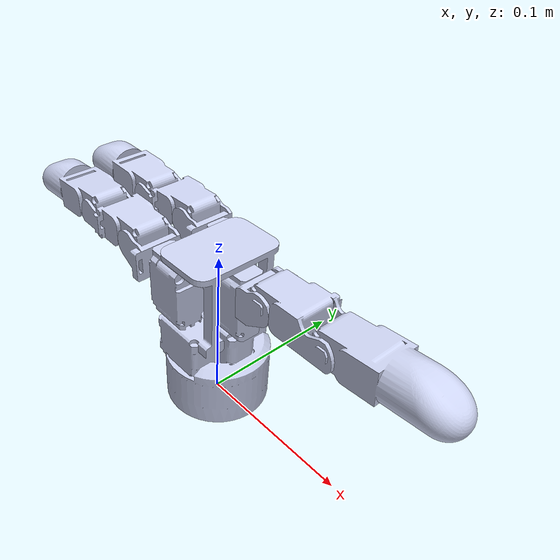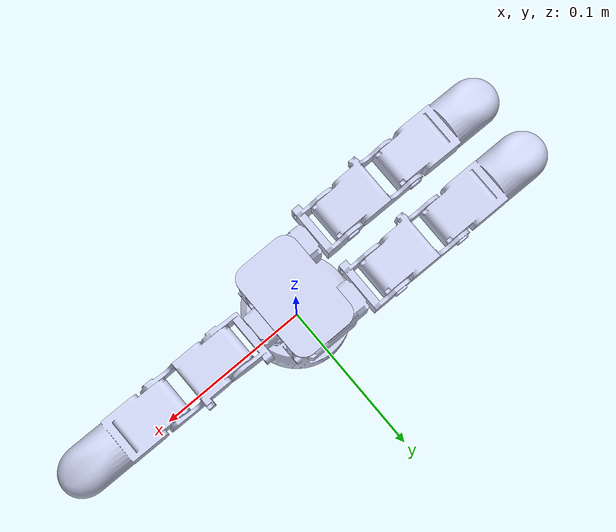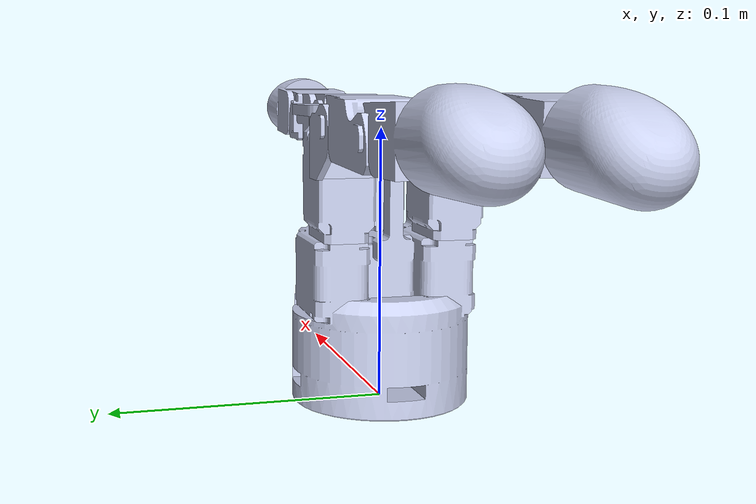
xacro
<?xml version="1.0" encoding="utf-8"?>
<robot
  name="delto" xmlns:xacro="http://www.ros.org/wiki/xacro">
  <xacro:include filename="$(find delto)/urdf/delto.gazebo" />

  <link name="world"/>
  <joint name="base_joint"
    type="fixed">
    <origin
      xyz="0 0 0"
      rpy="0 0 0" />
    <parent
      link="world" />
    <child
      link="base_link" />
    <axis
      xyz="0 0 0" />
  </joint>
  <link
    name="base_link">
    <inertial>
      <origin
        xyz="0.0163977810461998 -0.000424816867342437 0.078525694814142"
        rpy="0 0 0" />
      <mass
        value="0.292" />
      <inertia
        ixx="0"
        ixy="0"
        ixz="0"
        iyy="0"
        iyz="0"
        izz="0" />
    </inertial>
    <visual>
      <origin
        xyz="0 0 0"
        rpy="0 0 0" />
      <geometry>
        <mesh
          filename="package://delto/meshes/base_link.STL" />
      </geometry>
      <material
        name="">
        <color
          rgba="0.792156862745098 0.819607843137255 0.933333333333333 1" />
      </material>
    </visual>
    <collision>
      <origin
        xyz="0 0 0"
        rpy="0 0 0" />
      <geometry>
        <mesh
          filename="package://delto/meshes/base_link.STL" />
      </geometry>
    </collision>
  </link>
  <link
    name="finger1_link1">
    <inertial>
      <origin
        xyz="0.0163977810461998 -0.000424816867342437 0.078525694814142"
        rpy="0 0 0" />
      <mass
        value="0.048" />
      <inertia
        ixx="0"
        ixy="0"
        ixz="0"
        iyy="0"
        iyz="0"
        izz="0" />
    </inertial>
    <visual>
      <origin
        xyz="0 0 0"
        rpy="0 0 0" />
      <geometry>
        <mesh
          filename="package://delto/meshes/finger1_link1.STL" />
      </geometry>
      <material
        name="">
        <color
          rgba="0.792156862745098 0.819607843137255 0.933333333333333 1" />
      </material>
    </visual>
    <collision>
      <origin
        xyz="0 0 0"
        rpy="0 0 0" />
      <geometry>
        <mesh
          filename="package://delto/meshes/finger1_link1.STL" />
      </geometry>
    </collision>
  </link>
  <joint
    name="finger1_joint1"
    type="revolute">
    <origin
      xyz="0.0150000000430074 0 0.0829999999999999"
      rpy="0 0 0" />
    <parent
      link="base_link" />
    <child
      link="finger1_link1" />
    <axis
      xyz="0 0 1" />
    <limit
      lower="-0.804"
      upper="0.804"
      effort="10"
      velocity="100" />
    <dynamics damping="0.64" friction="1"/>
  </joint>

  <transmission name="tran_1_1">
    <type>transmission_interface/SimpleTransmission</type>
    <joint name="finger1_joint1">
      <hardwareInterface>hardware_interface/EffortJointInterface</hardwareInterface>
    </joint>
    <actuator name="motor_1_1">
      <hardwareInterface>hardware_interface/EffortJointInterface</hardwareInterface>
      <mechanicalReduction>1</mechanicalReduction>
    </actuator>
  </transmission>

  <link
    name="finger1_link2">
    <inertial>
      <origin
        xyz="0.0163977810461998 -0.000424816867342437 0.078525694814142"
        rpy="0 0 0" />
      <mass
        value="0.012" />
      <inertia
        ixx="0"
        ixy="0"
        ixz="0"
        iyy="0"
        iyz="0"
        izz="0" />
    </inertial>
    <visual>
      <origin
        xyz="0 0 0"
        rpy="0 0 0" />
      <geometry>
        <mesh
          filename="package://delto/meshes/finger1_link2.STL" />
      </geometry>
      <material
        name="">
        <color
          rgba="0.792156862745098 0.819607843137255 0.933333333333333 1" />
      </material>
    </visual>
    <collision>
      <origin
        xyz="0 0 0"
        rpy="0 0 0" />
      <geometry>
        <mesh
          filename="package://delto/meshes/finger1_link2.STL" />
      </geometry>
    </collision>
  </link>
  <joint
    name="finger1_joint2"
    type="revolute">
    <origin
      xyz="0.0114 -5.8419E-05 0.0091"
      rpy="1.57 0 1.57" />
    <parent
      link="finger1_link1" />
    <child
      link="finger1_link2" />
    <axis
      xyz="0 0 1" />
    <limit
      lower="-1.714"
      upper="1.714"
      effort="10"
      velocity="100" />
    <dynamics damping="0.64" friction="1"/>
  </joint>

  <transmission name="tran_1_2">
    <type>transmission_interface/SimpleTransmission</type>
    <joint name="finger1_joint2">
      <hardwareInterface>hardware_interface/EffortJointInterface</hardwareInterface>
    </joint>
    <actuator name="motor_1_2">
      <hardwareInterface>hardware_interface/EffortJointInterface</hardwareInterface>
      <mechanicalReduction>1</mechanicalReduction>
    </actuator>
  </transmission>

  <link
    name="finger1_link3">
    <inertial>
      <origin
        xyz="0.0163977810461998 -0.000424816867342437 0.078525694814142"
        rpy="0 0 0" />
      <mass
        value="0.038" />
      <inertia
        ixx="0"
        ixy="0"
        ixz="0"
        iyy="0"
        iyz="0"
        izz="0" />
    </inertial>
    <visual>
      <origin
        xyz="0 0 0"
        rpy="0 0 0" />
      <geometry>
        <mesh
          filename="package://delto/meshes/finger1_link3.STL" />
      </geometry>
      <material
        name="">
        <color
          rgba="0.792156862745098 0.819607843137255 0.933333333333333 1" />
      </material>
    </visual>
    <collision>
      <origin
        xyz="0 0 0"
        rpy="0 0 0" />
      <geometry>
        <mesh
          filename="package://delto/meshes/finger1_link3.STL" />
      </geometry>
    </collision>
  </link>
  <joint
    name="finger1_joint3"
    type="revolute">
    <origin
      xyz="-0.014938 0.0098942 0.0203"
      rpy="1.57 -1.57 -1.57" />
    <parent
      link="finger1_link2" />
    <child
      link="finger1_link3" />
    <axis
      xyz="0 0 1" />
    <limit
      lower="0"
      upper="2.199"
      effort="10"
      velocity="100" />
    <dynamics damping="0.64" friction="1"/>
  </joint>

  <transmission name="tran_1_3">
    <type>transmission_interface/SimpleTransmission</type>
    <joint name="finger1_joint3">
      <hardwareInterface>hardware_interface/EffortJointInterface</hardwareInterface>
    </joint>
    <actuator name="motor_1_3">
      <hardwareInterface>hardware_interface/EffortJointInterface</hardwareInterface>
      <mechanicalReduction>1</mechanicalReduction>
    </actuator>
  </transmission>

  <link
    name="finger1_link4">
    <inertial>
      <origin
        xyz="0.0163977810461998 -0.000424816867342437 0.078525694814142"
        rpy="0 0 0" />
      <mass
        value="0.06" />
      <inertia
        ixx="0"
        ixy="0"
        ixz="0"
        iyy="0"
        iyz="0"
        izz="0" />
    </inertial>
    <visual>
      <origin
        xyz="0 0 0"
        rpy="0 0 0" />
      <geometry>
        <mesh
          filename="package://delto/meshes/finger1_link4.STL" />
      </geometry>
      <material
        name="">
        <color
          rgba="0.792156862745098 0.819607843137255 0.933333333333333 1" />
      </material>
    </visual>
    <collision>
      <origin
        xyz="0 0 0"
        rpy="0 0 0" />
      <geometry>
        <mesh
          filename="package://delto/meshes/finger1_link4.STL" />
      </geometry>
    </collision>
  </link>
  <joint
    name="finger1_joint4"
    type="revolute">
    <origin
      xyz="0.043312 -0.00012363 0"
      rpy="0 0 0" />
    <parent
      link="finger1_link3" />
    <child
      link="finger1_link4" />
    <axis
      xyz="0 0 1" />
    <limit
      lower="-0.376"
      upper="2.225"
      effort="10"
      velocity="100" />
    <dynamics damping="0.64" friction="1"/>
  </joint>

  <transmission name="tran_1_4">
    <type>transmission_interface/SimpleTransmission</type>
    <joint name="finger1_joint4">
      <hardwareInterface>hardware_interface/EffortJointInterface</hardwareInterface>
    </joint>
    <actuator name="motor_1_4">
      <hardwareInterface>hardware_interface/EffortJointInterface</hardwareInterface>
      <mechanicalReduction>1</mechanicalReduction>
    </actuator>
  </transmission>

  <link
    name="finger2_link1">
    <inertial>
      <origin
        xyz="0.0163977810461998 -0.000424816867342437 0.078525694814142"
        rpy="0 0 0" />
      <mass
        value="0.048" />
      <inertia
        ixx="0"
        ixy="0"
        ixz="0"
        iyy="0"
        iyz="0"
        izz="0" />
    </inertial>
    <visual>
      <origin
        xyz="0 0 0"
        rpy="0 0 0" />
      <geometry>
        <mesh
          filename="package://delto/meshes/finger2_link1.STL" />
      </geometry>
      <material
        name="">
        <color
          rgba="0.792156862745098 0.819607843137255 0.933333333333333 1" />
      </material>
    </visual>
    <collision>
      <origin
        xyz="0 0 0"
        rpy="0 0 0" />
      <geometry>
        <mesh
          filename="package://delto/meshes/finger2_link1.STL" />
      </geometry>
    </collision>
  </link>
  <joint
    name="finger2_joint1"
    type="revolute">
    <origin
      xyz="-0.0132 0.0196 0.083"
      rpy="0 0 3.14" />
    <parent
      link="base_link" />
    <child
      link="finger2_link1" />
    <axis
      xyz="0 0 1" />
    <limit
      lower="-2.147"
      upper="0.788"
      effort="10"
      velocity="100" />
    <dynamics damping="0.64" friction="1"/>
  </joint>

  <transmission name="tran_2_1">
    <type>transmission_interface/SimpleTransmission</type>
    <joint name="finger2_joint1">
      <hardwareInterface>hardware_interface/EffortJointInterface</hardwareInterface>
    </joint>
    <actuator name="motor_2_1">
      <hardwareInterface>hardware_interface/EffortJointInterface</hardwareInterface>
      <mechanicalReduction>1</mechanicalReduction>
    </actuator>
  </transmission>

  <link
    name="finger2_link2">
    <inertial>
      <origin
        xyz="0.0163977810461998 -0.000424816867342437 0.078525694814142"
        rpy="0 0 0" />
      <mass
        value="0.012" />
      <inertia
        ixx="0"
        ixy="0"
        ixz="0"
        iyy="0"
        iyz="0"
        izz="0" />
    </inertial>
    <visual>
      <origin
        xyz="0 0 0"
        rpy="0 0 0" />
      <geometry>
        <mesh
          filename="package://delto/meshes/finger2_link2.STL" />
      </geometry>
      <material
        name="">
        <color
          rgba="0.792156862745098 0.819607843137255 0.933333333333333 1" />
      </material>
    </visual>
    <collision>
      <origin
        xyz="0 0 0"
        rpy="0 0 0" />
      <geometry>
        <mesh
          filename="package://delto/meshes/finger2_link2.STL" />
      </geometry>
    </collision>
  </link>
  <joint
    name="finger2_joint2"
    type="revolute">
    <origin
      xyz="0.014198 -0.00024724 0.0091"
      rpy="0.0 -1.57 3.14" />
    <parent
      link="finger2_link1" />
    <child
      link="finger2_link2" />
    <axis
      xyz="0 0 1" />
    <limit
      lower="-1.714"
      upper="1.714"
      effort="10"
      velocity="100" />
    <dynamics damping="0.64" friction="1"/>
  </joint>

  <transmission name="tran_2_2">
    <type>transmission_interface/SimpleTransmission</type>
    <joint name="finger2_joint2">
      <hardwareInterface>hardware_interface/EffortJointInterface</hardwareInterface>
    </joint>
    <actuator name="motor_2_2">
      <hardwareInterface>hardware_interface/EffortJointInterface</hardwareInterface>
      <mechanicalReduction>1</mechanicalReduction>
    </actuator>
  </transmission>

  <link
    name="finger2_link3">
    <inertial>
      <origin
        xyz="0.0163977810461998 -0.000424816867342437 0.078525694814142"
        rpy="0 0 0" />
      <mass
        value="0.038" />
      <inertia
        ixx="0"
        ixy="0"
        ixz="0"
        iyy="0"
        iyz="0"
        izz="0" />
    </inertial>
    <visual>
      <origin
        xyz="0 0 0"
        rpy="0 0 0" />
      <geometry>
        <mesh
          filename="package://delto/meshes/finger2_link3.STL" />
      </geometry>
      <material
        name="">
        <color
          rgba="0.792156862745098 0.819607843137255 0.933333333333333 1" />
      </material>
    </visual>
    <collision>
      <origin
        xyz="0 0 0"
        rpy="0 0 0" />
      <geometry>
        <mesh
          filename="package://delto/meshes/finger2_link3.STL" />
      </geometry>
    </collision>
  </link>
  <joint
    name="finger2_joint3"
    type="revolute">
    <origin
      xyz="0.010098 0.014801 0.0175"
      rpy="-1.57 1.57 0.0" />
    <parent
      link="finger2_link2" />
    <child
      link="finger2_link3" />
    <axis
      xyz="0 0 1" />
    <limit
      lower="0"
      upper="2.199"
      effort="10"
      velocity="100" />
    <dynamics damping="0.64" friction="1"/>
  </joint>

  <transmission name="tran_2_3">
    <type>transmission_interface/SimpleTransmission</type>
    <joint name="finger2_joint3">
      <hardwareInterface>hardware_interface/EffortJointInterface</hardwareInterface>
    </joint>
    <actuator name="motor_2_3">
      <hardwareInterface>hardware_interface/EffortJointInterface</hardwareInterface>
      <mechanicalReduction>1</mechanicalReduction>
    </actuator>
  </transmission>

  <link
    name="finger2_link4">
    <inertial>
      <origin
        xyz="0.0163977810461998 -0.000424816867342437 0.078525694814142"
        rpy="0 0 0" />
      <mass
        value="0.06" />
      <inertia
        ixx="0"
        ixy="0"
        ixz="0"
        iyy="0"
        iyz="0"
        izz="0" />
    </inertial>
    <visual>
      <origin
        xyz="0 0 0"
        rpy="0 0 0" />
      <geometry>
        <mesh
          filename="package://delto/meshes/finger2_link4.STL" />
      </geometry>
      <material
        name="">
        <color
          rgba="0.792156862745098 0.819607843137255 0.933333333333333 1" />
      </material>
    </visual>
    <collision>
      <origin
        xyz="0 0 0"
        rpy="0 0 0" />
      <geometry>
        <mesh
          filename="package://delto/meshes/finger2_link4.STL" />
      </geometry>
    </collision>
  </link>
  <joint
    name="finger2_joint4"
    type="revolute">
    <origin
      xyz="-0.043282 0.0016118 0"
      rpy="0 0 0" />
    <parent
      link="finger2_link3" />
    <child
      link="finger2_link4" />
    <axis
      xyz="0 0 1" />
    <limit
      lower="-0.376"
      upper="2.225"
      effort="10"
      velocity="100" />
    <dynamics damping="0.64" friction="1"/>
  </joint>

  <transmission name="tran_2_4">
    <type>transmission_interface/SimpleTransmission</type>
    <joint name="finger2_joint4">
      <hardwareInterface>hardware_interface/EffortJointInterface</hardwareInterface>
    </joint>
    <actuator name="motor_2_4">
      <hardwareInterface>hardware_interface/EffortJointInterface</hardwareInterface>
      <mechanicalReduction>1</mechanicalReduction>
    </actuator>
  </transmission>

  <link
    name="finger3_link1">
    <inertial>
      <origin
        xyz="0.0163977810461998 -0.000424816867342437 0.078525694814142"
        rpy="0 0 0" />
      <mass
        value="0.048" />
      <inertia
        ixx="0"
        ixy="0"
        ixz="0"
        iyy="0"
        iyz="0"
        izz="0" />
    </inertial>
    <visual>
      <origin
        xyz="0 0 0"
        rpy="0 0 0" />
      <geometry>
        <mesh
          filename="package://delto/meshes/finger3_link1.STL" />
      </geometry>
      <material
        name="">
        <color
          rgba="0.792156862745098 0.819607843137255 0.933333333333333 1" />
      </material>
    </visual>
    <collision>
      <origin
        xyz="0 0 0"
        rpy="0 0 0" />
      <geometry>
        <mesh
          filename="package://delto/meshes/finger3_link1.STL" />
      </geometry>
    </collision>
  </link>
  <joint
    name="finger3_joint1"
    type="revolute">
    <origin
      xyz="-0.0131999999939963 -0.019600000000007 0.0829999999999988"
      rpy="0 0 3.14" />
    <parent
      link="base_link" />
    <child
      link="finger3_link1" />
    <axis
      xyz="0 0 1" />
    <limit
      lower="-0.788"
      upper="2.147"
      effort="10"
      velocity="100" />
    <dynamics damping="0.64" friction="1"/>
  </joint>

  <transmission name="tran_3_1">
    <type>transmission_interface/SimpleTransmission</type>
    <joint name="finger3_joint1">
      <hardwareInterface>hardware_interface/EffortJointInterface</hardwareInterface>
    </joint>
    <actuator name="motor_3_1">
      <hardwareInterface>hardware_interface/EffortJointInterface</hardwareInterface>
      <mechanicalReduction>1</mechanicalReduction>
    </actuator>
  </transmission>

  <link
    name="finger3_link2">
    <inertial>
      <origin
        xyz="0.0163977810461998 -0.000424816867342437 0.078525694814142"
        rpy="0 0 0" />
      <mass
        value="0.012" />
      <inertia
        ixx="0"
        ixy="0"
        ixz="0"
        iyy="0"
        iyz="0"
        izz="0" />
    </inertial>
    <visual>
      <origin
        xyz="0 0 0"
        rpy="0 0 0" />
      <geometry>
        <mesh
          filename="package://delto/meshes/finger3_link2.STL" />
      </geometry>
      <material
        name="">
        <color
          rgba="0.792156862745098 0.819607843137255 0.933333333333333 1" />
      </material>
    </visual>
    <collision>
      <origin
        xyz="0 0 0"
        rpy="0 0 0" />
      <geometry>
        <mesh
          filename="package://delto/meshes/finger3_link2.STL" />
      </geometry>
    </collision>
  </link>
  <joint
    name="finger3_joint2"
    type="revolute">
    <origin
      xyz="0.0141973935884402 -0.000272057521322411 0.00910000000000048"
      rpy="3.14 -1.57 0" />
    <parent
      link="finger3_link1" />
    <child
      link="finger3_link2" />
    <axis
      xyz="0 0 1" />
    <limit
      lower="-1.714"
      upper="1.714"
      effort="10"
      velocity="100" />
    <dynamics damping="0.64" friction="1"/>
  </joint>

  <transmission name="tran_3_2">
    <type>transmission_interface/SimpleTransmission</type>
    <joint name="finger3_joint2">
      <hardwareInterface>hardware_interface/EffortJointInterface</hardwareInterface>
    </joint>
    <actuator name="motor_3_2">
      <hardwareInterface>hardware_interface/EffortJointInterface</hardwareInterface>
      <mechanicalReduction>1</mechanicalReduction>
    </actuator>
  </transmission>

  <link
    name="finger3_link3">
    <inertial>
      <origin
        xyz="0.0163977810461998 -0.000424816867342437 0.078525694814142"
        rpy="0 0 0" />
      <mass
        value="0.038" />
      <inertia
        ixx="0"
        ixy="0"
        ixz="0"
        iyy="0"
        iyz="0"
        izz="0" />
    </inertial>
    <visual>
      <origin
        xyz="0 0 0"
        rpy="0 0 0" />
      <geometry>
        <mesh
          filename="package://delto/meshes/finger3_link3.STL" />
      </geometry>
      <material
        name="">
        <color
          rgba="0.792156862745098 0.819607843137255 0.933333333333333 1" />
      </material>
    </visual>
    <collision>
      <origin
        xyz="0 0 0"
        rpy="0 0 0" />
      <geometry>
        <mesh
          filename="package://delto/meshes/finger3_link3.STL" />
      </geometry>
    </collision>
  </link>
  <joint
    name="finger3_joint3"
    type="revolute">
    <origin
      xyz="0.01025 0.014696 0.0175"
      rpy="1.57 1.57 3.14" />
    <parent
      link="finger3_link2" />
    <child
      link="finger3_link3" />
    <axis
      xyz="0 0 1" />
    <limit
      lower="0"
      upper="2.199"
      effort="10"
      velocity="100" />
    <dynamics damping="0.64" friction="1"/>
  </joint>

  <transmission name="tran_3_3">
    <type>transmission_interface/SimpleTransmission</type>
    <joint name="finger3_joint3">
      <hardwareInterface>hardware_interface/EffortJointInterface</hardwareInterface>
    </joint>
    <actuator name="motor_3_3">
      <hardwareInterface>hardware_interface/EffortJointInterface</hardwareInterface>
      <mechanicalReduction>1</mechanicalReduction>
    </actuator>
  </transmission>

  <link
    name="finger3_link4">
    <inertial>
      <origin
        xyz="0.0163977810461998 -0.000424816867342437 0.078525694814142"
        rpy="0 0 0" />
      <mass
        value="0.06" />
      <inertia
        ixx="0"
        ixy="0"
        ixz="0"
        iyy="0"
        iyz="0"
        izz="0" />
    </inertial>
    <visual>
      <origin
        xyz="0 0 0"
        rpy="0 0 0" />
      <geometry>
        <mesh
          filename="package://delto/meshes/finger3_link4.STL" />
      </geometry>
      <material
        name="">
        <color
          rgba="0.792156862745098 0.819607843137255 0.933333333333333 1" />
      </material>
    </visual>
    <collision>
      <origin
        xyz="0 0 0"
        rpy="0 0 0" />
      <geometry>
        <mesh
          filename="package://delto/meshes/finger3_link4.STL" />
      </geometry>
    </collision>
  </link>
  <joint
    name="finger3_joint4"
    type="revolute">
    <origin
      xyz="-0.043308 -0.0006013 0"
      rpy="0 0 0" />
    <parent
      link="finger3_link3" />
    <child
      link="finger3_link4" />
    <axis
      xyz="0 0 1" />
    <limit
      lower="-0.376"
      upper="2.225"
      effort="10"
      velocity="100" />
    <dynamics damping="0.64" friction="1"/>
  </joint>

  <transmission name="tran_3_4">
    <type>transmission_interface/SimpleTransmission</type>
    <joint name="finger3_joint4">
      <hardwareInterface>hardware_interface/EffortJointInterface</hardwareInterface>
    </joint>
    <actuator name="motor_3_4">
      <hardwareInterface>hardware_interface/EffortJointInterface</hardwareInterface>
      <mechanicalReduction>1</mechanicalReduction>
    </actuator>
  </transmission>

</robot>
